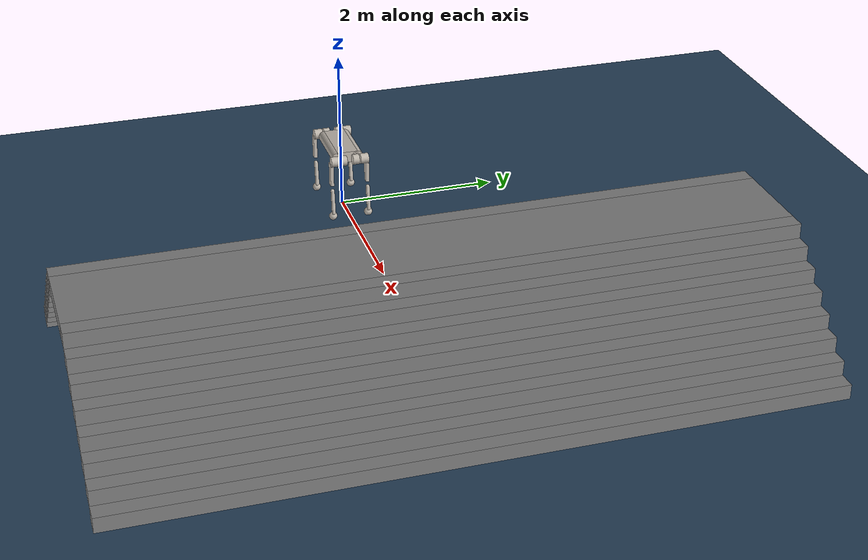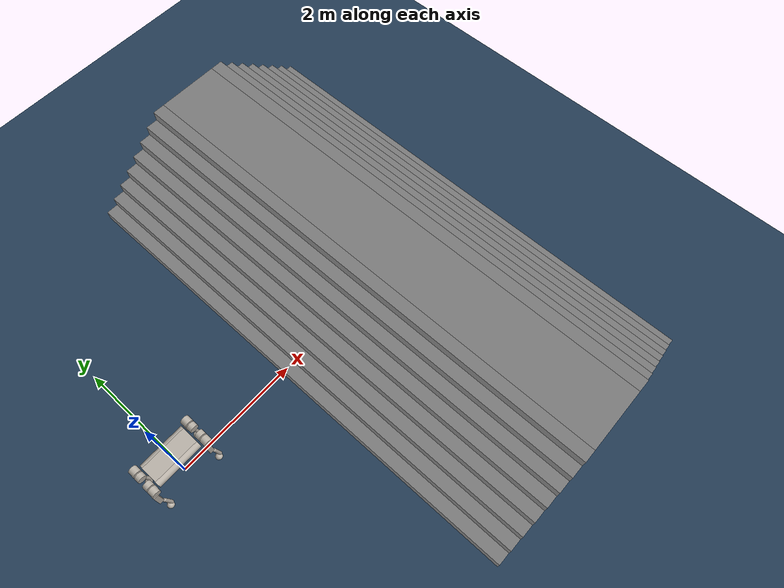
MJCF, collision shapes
<mujoco model="robot scene">

  <include file="LS_A01.xml"/>
  <include file="stairs175_200.xml"/>

  <statistic center="0 0 0.1" extent="0.8"/>

  <visual>
    <headlight diffuse="0.6 0.6 0.6"  ambient="0.3 0.3 0.3" specular="0 0 0"/>
    <rgba haze="0.15 0.25 0.35 1"/>
    <global azimuth="120" elevation="-20"/>
  </visual>

  <asset>
    <texture type="skybox" builtin="gradient" rgb1="0.3 0.5 0.7" rgb2="0 0 0" width="512"
        height="3072"/>
    <texture type="2d" name="groundplane" builtin="checker" mark="edge" rgb1="0.2 0.3 0.4"
        rgb2="0.1 0.2 0.3" markrgb="0.8 0.8 0.8" width="300" height="300"/>
    <material name="groundplane" texture="groundplane" texuniform="true" texrepeat="5 5"
        reflectance="0.0"/>
  </asset>

  <worldbody>
    <light pos="0 0 1.5" dir="0 0 -1" directional="true"/>
    <geom name="floor" size="0 0 0.05" type="plane" material="groundplane"/>
  </worldbody>

</mujoco>

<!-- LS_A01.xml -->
<mujoco model="LS_A01">
  <compiler angle="radian" assetdir="meshes" texturedir="meshes" discardvisual="false" autolimits="true" eulerseq="zyx"/>
  <option timestep="0.001"  tolerance="0.0000000001" impratio="200" noslip_iterations="100000"/>

  <visual >
    <rgba contactpoint="0.1 0.8 0.2 1" contactforce="0.7 0.5 0.4 1"/>
    <scale forcewidth="0.04" contactwidth="0.15" contactheight="0.01"/>
  </visual>

  <default>
    <default class="quadruped">
      <geom friction="0.8" margin="0.001" material="robot_color"/>
      <default class="collision">
        <geom group="4" contype="1" conaffinity="1" mass="0"/>
        <default class="collision_abad">
          <geom type="cylinder" size="0.065 0.04" mass="0"  quat="1 1 0 0"/>
        </default>
        <default class="collision_thigh_1">
          <geom type="cylinder" size="0.065 0.052" mass="0.0" quat="1 1 0 0"/>
        </default>
        <default class="collision_thigh_2">
          <geom type="box" size="0.036 0.022 0.15" mass="0.0"/>
        </default>
        <default class="collision_calf">
          <geom type="capsule" size="0.025" fromto="0 0 -0.05 0.04 0 -0.34" mass="0.0"/>
        </default>
        <default class="foot">
          <geom type="sphere" size="0.052" pos="0 0 -0.40" mass="0.05" priority="1" solimp="0.015 1 0.031"
              condim="3" friction="1.0 0.02 0.01"/>
        </default>
        <default class="foot_site">
          <site size="0.05" pos="0 0 -0.4" group="3"/>
        </default>
      </default>
      <default class="visual">
        <geom type="mesh" contype="0" conaffinity="0" group="2"/>
      </default>
      <default class="joint">
        <joint damping="0.6"/>
      </default>
    </default>
  </default>

  <asset>
    <texture type="2d" name="trunk" file="texture2.png"/>
    <material name="robot_color" texture="trunk" specular="1" shininess="0.25"/>
    <mesh name="base_link" file="base_link.STL"/>
    <mesh name="fr_abad" file="fr_abad.STL"/>
    <mesh name="fr_thigh" file="fr_thigh.STL"/>
    <mesh name="fr_calf" file="fr_calf.STL"/>
    <mesh name="fl_abad" file="fl_abad.STL"/>
    <mesh name="fl_thigh" file="fl_thigh.STL"/>
    <mesh name="fl_calf" file="fl_calf.STL"/>
    <mesh name="hr_abad" file="hr_abad.STL"/>
    <mesh name="hr_thigh" file="hr_thigh.STL"/>
    <mesh name="hr_calf" file="hr_calf.STL"/>
    <mesh name="hl_abad" file="hl_abad.STL"/>
    <mesh name="hl_thigh" file="hl_thigh.STL"/>
    <mesh name="hl_calf" file="hl_calf.STL"/>
  </asset>

  <worldbody>
  <light name="spotlight" mode="targetbodycom" target="trunk_link" pos="0 -1 2"/>
  <body name="trunk_link" pos="0 0 0.8">
    <geom type="mesh" class="visual" rgba="0.79216 0.81961 0.93333 1" mesh="base_link"/>
    <inertial mass="81.4" pos="0.012476 -0.000175 -0.002426" fullinertia="0.224 1.399 1.521 0.002 -0.007 -8.168e-05"/>
    <geom class="collision" type="box" pos="0 0 0" size="0.35 0.13 0.07" contype="0" conaffinity="1"/>
    <geom class="collision" type="cylinder" size="0.07 0.35" pos="0 -0.13 0" quat="1 0 1 0" contype="0" conaffinity="1"/>
    <geom class="collision" type="cylinder" size="0.07 0.35" pos="0 0.13 0" quat="1 0 1 0" contype="0" conaffinity="1"/>
    <site name="imu" size="0.01" pos="0 0 0"/>
    <freejoint/>
      <body name="fr_abad" pos="0.44 -0.09925 0">
      <inertial pos="-0.008464 0.025325 0" quat="0.454213 0.454213 0.541932 0.541932" mass="2.567" diaginertia="0.00709759 0.006 0.00390241"/>
      <joint name="fr_joint0" pos="0 0 0" axis="1 0 0" range="-0.7812 0.7812" class="joint"/>
      <geom type="mesh" class="visual" rgba="0.79216 0.81961 0.93333 1" mesh="fr_abad"/>
      <geom class="collision_abad" pos="0 0.02 0" contype="0" conaffinity="0"/>
      <body name="fr_thigh" pos="0 -0.12975 0">
        <inertial pos="-0.00932 0.042788 -0.057446" quat="0.933993 -0.121522 0.0154955 -0.335633" mass="3.916" diaginertia="0.0572894 0.0555133 0.00819728"/>
        <joint name="fr_joint1" pos="0 0 0" axis="0 -1 0" range="-2.6041 0" class="joint"/>
        <geom type="mesh" class="visual" rgba="0.79216 0.81961 0.93333 1" mesh="fr_thigh"/>
        <geom class="collision_thigh_1" pos="0 0.04 0" contype="0" conaffinity="0"/>
        <geom class="collision_thigh_2" pos="-0.03 0.0 -0.18" contype="0" conaffinity="0"/>
        <body name="fr_calf" pos="0 0 -0.35">
          <inertial pos="0.006544 0.000652 -0.256" quat="0.70838 -0.000573823 0.00389973 0.70582" mass="0.674" diaginertia="0.0190007 0.0180004 0.00109891"/>
          <joint name="fr_joint2" pos="0 0 0" axis="0 -1 0" range="0.5208 2.5173" class="joint" />
          <geom type="mesh" class="visual" rgba="0.79216 0.81961 0.93333 1" mesh="fr_calf"/>
          <geom class="collision_calf" contype="1" conaffinity="0"/>
          <geom class="foot" contype="1" conaffinity="1"/>
          <site name="fr_site" class="foot_site" />
        </body>
      </body>
    </body>
    <body name="fl_abad" pos="0.44 0.09925 0">
      <inertial pos="-0.008464 -0.025325 0" quat="0.541932 0.541932 0.454213 0.454213" mass="2.567" diaginertia="0.00709759 0.006 0.00390241"/>
      <joint name="fl_joint0" pos="0 0 0" axis="1 0 0" range="-0.7812 0.7812" class="joint"/>
      <geom type="mesh" class="visual" rgba="0.79216 0.81961 0.93333 1" mesh="fl_abad"/>
      <geom class="collision_abad" pos="0 -0.02 0" contype="0" conaffinity="0"/>
      <body name="fl_thigh" pos="0 0.12975 0">
        <inertial pos="-0.00932 -0.042788 -0.057446" quat="0.933993 0.121522 0.0154955 0.335633" mass="3.916" diaginertia="0.0572894 0.0555133 0.00819728"/>
        <joint name="fl_joint1" pos="0 0 0" axis="0 -1 0" range="-2.6041 0" class="joint"/>
        <geom type="mesh" class="visual" rgba="0.79216 0.81961 0.93333 1" mesh="fl_thigh"/>
        <geom class="collision_thigh_1" pos="0 -0.04 0" contype="0" conaffinity="0"/>
        <geom class="collision_thigh_2" pos="-0.03 0.0 -0.18" contype="0" conaffinity="0"/>
        <body name="fl_calf" pos="0 0 -0.35">
          <inertial pos="0.006544 -0.000652 -0.256" quat="0.70582 0.00389973 -0.000573823 0.70838" mass="0.674" diaginertia="0.0190007 0.0180004 0.00109891"/>
          <joint name="fl_joint2" pos="0 0 0" axis="0 -1 0" range="0.5208 2.5173" class="joint" />
          <geom type="mesh" class="visual" rgba="0.79216 0.81961 0.93333 1" mesh="fl_calf"/>
          <geom class="collision_calf" contype="1" conaffinity="0"/>
          <geom class="foot" contype="1" conaffinity="1"/>
          <site name="fl_site" class="foot_site"/>
        </body>
      </body>
    </body>
    <body name="hr_abad" pos="-0.44 -0.09925 0">
      <inertial pos="0.008464 0.025325 0" quat="0.541932 0.541932 0.454213 0.454213" mass="2.567" diaginertia="0.00709759 0.006 0.00390241"/>
      <joint name="hr_joint0" pos="0 0 0" axis="1 0 0" range="-0.7812 0.7812" class="joint"/>
      <geom type="mesh" class="visual" rgba="0.79216 0.81961 0.93333 1" mesh="hr_abad"/>
      <geom class="collision_abad" pos="0 0.02 0" contype="0" conaffinity="0"/>
      <body name="hr_thigh" pos="0 -0.12975 0">
        <inertial pos="-0.00932 0.042788 -0.057446" quat="0.933993 -0.121522 0.0154955 -0.335633" mass="3.916" diaginertia="0.0572894 0.0555133 0.00819728"/>
        <joint name="hr_joint1" pos="0 0 0" axis="0 -1 0" range="-2.6041 0" class="joint"/>
        <geom type="mesh" class="visual" rgba="0.79216 0.81961 0.93333 1" mesh="hr_thigh"/>
        <geom class="collision_thigh_1" pos="0 0.04 0" contype="0" conaffinity="0"/>
        <geom class="collision_thigh_2" pos="-0.03 0.0 -0.18" contype="0" conaffinity="0"/>
        <body name="hr_calf" pos="0 0 -0.35">
          <inertial pos="0.006544 0.000652 -0.256" quat="0.70838 -0.000573823 0.00389973 0.70582" mass="0.674" diaginertia="0.0190007 0.0180004 0.00109891"/>
          <joint name="hr_joint2" pos="0 0 0" axis="0 -1 0" range="0.5208 2.5173" class="joint" />
          <geom type="mesh" class="visual" rgba="0.79216 0.81961 0.93333 1" mesh="hr_calf"/>
          <geom class="collision_calf" contype="1" conaffinity="0"/>
          <geom class="foot" contype="1" conaffinity="1"/>
          <site name="hr_site" class="foot_site"/>
        </body>
      </body>
    </body>
    <body name="hl_abad" pos="-0.44 0.09925 0">
      <inertial pos="0.008464 -0.025325 0" quat="0.454213 0.454213 0.541932 0.541932" mass="2.567" diaginertia="0.00709759 0.006 0.00390241"/>
      <joint name="hl_joint0" pos="0 0 0" axis="1 0 0" range="-0.7812 0.7812" class="joint"/>
      <geom type="mesh" class="visual" rgba="0.79216 0.81961 0.93333 1" mesh="hl_abad"/>
      <geom class="collision_abad" pos="0 -0.02 0" contype="0" conaffinity="0"/>
      <body name="hl_thigh" pos="0 0.12975 0">
        <inertial pos="-0.00932 -0.042788 -0.057446" quat="0.933993 0.121522 0.0154955 0.335633" mass="3.916" diaginertia="0.0572894 0.0555133 0.00819728"/>
        <joint name="hl_joint1" pos="0 0 0" axis="0 -1 0" range="-2.6041 0" class="joint" />
        <geom type="mesh" class="visual" rgba="0.79216 0.81961 0.93333 1" mesh="hl_thigh"/>
        <geom class="collision_thigh_1" pos="0 -0.04 0" contype="0" conaffinity="0"/>
        <geom class="collision_thigh_2" pos="-0.03 0.0 -0.18" contype="0" conaffinity="0"/>
        <body name="hl_calf" pos="0 0 -0.35">
          <inertial pos="0.006544 -0.000652 -0.256" quat="0.70582 0.00389973 -0.000573823 0.70838" mass="0.674" diaginertia="0.0190007 0.0180004 0.00109891"/>
          <joint name="hl_joint2" pos="0 0 0" axis="0 -1 0" range="0.5208 2.5173" class="joint"/>
          <geom type="mesh" class="visual" rgba="0.79216 0.81961 0.93333 1" mesh="hl_calf"/>
          <geom class="collision_calf" contype="1" conaffinity="0"/>
          <geom class="foot" contype="1" conaffinity="1"/>
          <site name="hl_site" class="foot_site"/>
        </body>
      </body>
    </body>
    </body>
  </worldbody>

<actuator>
<motor name="fr_tau0" joint="fr_joint0" forcerange="-180 180" />
<motor name="fr_tau1" joint="fr_joint1" forcerange="-180 180" />
<motor name="fr_tau2" joint="fr_joint2" forcerange="-180 180" />
<motor name="fl_tau0" joint="fl_joint0" forcerange="-180 180" />
<motor name="fl_tau1" joint="fl_joint1" forcerange="-180 180" />
<motor name="fl_tau2" joint="fl_joint2" forcerange="-180 180" />
<motor name="hr_tau0" joint="hr_joint0" forcerange="-180 180" />
<motor name="hr_tau1" joint="hr_joint1" forcerange="-180 180" />
<motor name="hr_tau2" joint="hr_joint2" forcerange="-180 180" />
<motor name="hl_tau0" joint="hl_joint0" forcerange="-180 180" />
<motor name="hl_tau1" joint="hl_joint1" forcerange="-180 180" />
<motor name="hl_tau2" joint="hl_joint2" forcerange="-180 180" />
</actuator>
<sensor>
<framequat name="imu_quat" objtype="site" objname="imu"/>
<gyro name="imu_omega" site="imu" noise="5e-4" cutoff="34.9"/>
<accelerometer name="imu_acc" site="imu" noise="1e-2" cutoff="157"/>
<framepos name="fr_foot" objtype="site" objname="fr_site" reftype="site" refname="imu"/>
<framepos name="fl_foot" objtype="site" objname="fl_site" reftype="site" refname="imu"/>
<framepos name="hr_foot" objtype="site" objname="hr_site" reftype="site" refname="imu"/>
<framepos name="hl_foot" objtype="site" objname="hl_site" reftype="site" refname="imu"/>
<touch name="fr_touch" site="fr_site"/>
<touch name="fl_touch" site="fl_site"/>
<touch name="rr_touch" site="hr_site"/>
<touch name="rl_touch" site="hl_site"/>
</sensor>

</mujoco>

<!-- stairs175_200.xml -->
<mujoco model="prototype_model">
  <worldbody>
      <geom pos="2 0 0.0875" size="0.1 4 0.0875" type="box"/>
      <geom pos="2.2 0 0.2625" size="0.1 4 0.0875" type="box"/>
      <geom pos="2.4 0 0.4375" size="0.1 4 0.0875" type="box"/>
      <geom pos="2.6 0 0.6125" size="0.1 4 0.0875" type="box"/>
      <geom pos="2.8 0 0.7875" size="0.1 4 0.0875" type="box"/>
      <geom pos="3.0 0 0.9625" size="0.1 4 0.0875" type="box"/>
      <geom pos="3.2 0 1.1375" size="0.1 4 0.0875" type="box"/>
      <geom pos="3.4 0 1.3125" size="0.1 4 0.0875" type="box"/>
      <geom pos="4.0 0 1.3125" size="0.5 4 0.0875" type="box"/>
      <geom pos="4.6 0 1.3125" size="0.1 4 0.0875" type="box"/>
      <geom pos="4.8 0 1.1375" size="0.1 4 0.0875" type="box"/>
      <geom pos="5.0 0 0.9625" size="0.1 4 0.0875" type="box"/>
      <geom pos="5.2 0 0.7875" size="0.1 4 0.0875" type="box"/>
      <geom pos="5.4 0 0.6125" size="0.1 4 0.0875" type="box"/>
      <geom pos="5.6 0 0.4375" size="0.1 4 0.0875" type="box"/>
      <geom pos="5.8 0 0.2625" size="0.1 4 0.0875" type="box"/>
      <geom pos="6 0 0.0875" size="0.1 4 0.0875" type="box"/>
  </worldbody>
</mujoco>
